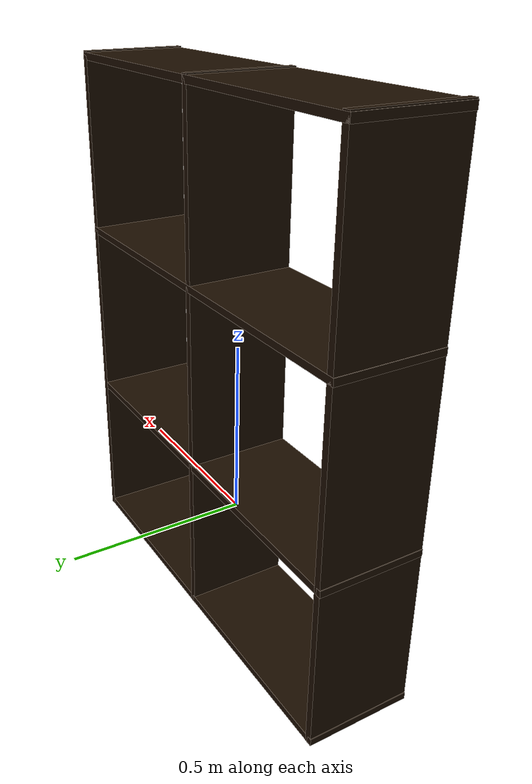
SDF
<?xml version='1.0'?>
<sdf version='1.7'>
  <model name='6_Cube_StorageE'>
    <link name='Wall_0'>
      <pose>0 0 -0.281485 0 -0 0</pose>
      <inertial>
        <mass>1.6201</mass>
        <inertia>
          <ixx>0.0119</ixx>
          <iyy>0.0631</iyy>
          <izz>0.0513</izz>
          <ixy>0</ixy>
          <ixz>0</ixz>
          <iyz>0</iyz>
        </inertia>
        <pose>0 0 0 0 -0 0</pose>
      </inertial>
      <self_collide>0</self_collide>
      <enable_wind>0</enable_wind>
      <kinematic>0</kinematic>
      <gravity>1</gravity>
      <visual name='Wall_0_Visual'>
        <geometry>
          <box>
            <size>1.2 0.296 0.02</size>
          </box>
        </geometry>
        <material>
          <script>
            <uri>file://media/materials/scripts/gazebo.material</uri>
            <name>Gazebo/Grey</name>
          </script>
          <ambient>0.106 0.051 0 1</ambient>
          <shader type='pixel'>
            <normal_map>__default__</normal_map>
          </shader>
          <diffuse>0.7 0.7 0.7 1</diffuse>
          <specular>0.01 0.01 0.01 1</specular>
          <emissive>0 0 0 1</emissive>
        </material>
        <pose>0 0 0 0 -0 0</pose>
        <transparency>0</transparency>
        <cast_shadows>1</cast_shadows>
      </visual>
      <collision name='Wall_0_Collision'>
        <laser_retro>0</laser_retro>
        <max_contacts>10</max_contacts>
        <pose>0 0 0 0 -0 0</pose>
        <geometry>
          <box>
            <size>0.616 0.296 0.02</size>
          </box>
        </geometry>
        <surface>
          <friction>
            <ode>
              <mu>1</mu>
              <mu2>1</mu2>
              <fdir1>0 0 0</fdir1>
              <slip1>0</slip1>
              <slip2>0</slip2>
            </ode>
            <torsional>
              <coefficient>1</coefficient>
              <patch_radius>0</patch_radius>
              <surface_radius>0</surface_radius>
              <use_patch_radius>1</use_patch_radius>
              <ode>
                <slip>0</slip>
              </ode>
            </torsional>
          </friction>
          <bounce>
            <restitution_coefficient>0</restitution_coefficient>
            <threshold>1e+06</threshold>
          </bounce>
          <contact>
            <collide_without_contact>0</collide_without_contact>
            <collide_without_contact_bitmask>1</collide_without_contact_bitmask>
            <collide_bitmask>1</collide_bitmask>
            <ode>
              <soft_cfm>0</soft_cfm>
              <soft_erp>0.2</soft_erp>
              <kp>1e+13</kp>
              <kd>1</kd>
              <max_vel>0.01</max_vel>
              <min_depth>0</min_depth>
            </ode>
            <bullet>
              <split_impulse>1</split_impulse>
              <split_impulse_penetration_threshold>-0.01</split_impulse_penetration_threshold>
              <soft_cfm>0</soft_cfm>
              <soft_erp>0.2</soft_erp>
              <kp>1e+13</kp>
              <kd>1</kd>
            </bullet>
          </contact>
        </surface>
      </collision>
    </link>
    <link name='Wall_10'>
      <pose>0 0 0.695219 0 -0 0</pose>
      <inertial>
        <mass>1.6201</mass>
        <inertia>
          <ixx>0.0119</ixx>
          <iyy>0.0631</iyy>
          <izz>0.0513</izz>
          <ixy>0</ixy>
          <ixz>0</ixz>
          <iyz>0</iyz>
        </inertia>
        <pose>0 0 0 0 -0 0</pose>
      </inertial>
      <self_collide>0</self_collide>
      <enable_wind>0</enable_wind>
      <kinematic>0</kinematic>
      <gravity>1</gravity>
      <visual name='Wall_10_Visual'>
        <geometry>
          <box>
            <size>1.2 0.296 0.02</size>
          </box>
        </geometry>
        <material>
          <script>
            <uri>file://media/materials/scripts/gazebo.material</uri>
            <name>Gazebo/Grey</name>
          </script>
          <ambient>0.106 0.051 0 1</ambient>
          <shader type='pixel'>
            <normal_map>__default__</normal_map>
          </shader>
          <diffuse>0.7 0.7 0.7 1</diffuse>
          <specular>0.01 0.01 0.01 1</specular>
          <emissive>0 0 0 1</emissive>
        </material>
        <pose>0 0 0 0 -0 0</pose>
        <transparency>0</transparency>
        <cast_shadows>1</cast_shadows>
      </visual>
      <collision name='Wall_10_Collision'>
        <laser_retro>0</laser_retro>
        <max_contacts>10</max_contacts>
        <pose>0 0 0 0 -0 0</pose>
        <geometry>
          <box>
            <size>0.616 0.296 0.02</size>
          </box>
        </geometry>
        <surface>
          <friction>
            <ode>
              <mu>1</mu>
              <mu2>1</mu2>
              <fdir1>0 0 0</fdir1>
              <slip1>0</slip1>
              <slip2>0</slip2>
            </ode>
            <torsional>
              <coefficient>1</coefficient>
              <patch_radius>0</patch_radius>
              <surface_radius>0</surface_radius>
              <use_patch_radius>1</use_patch_radius>
              <ode>
                <slip>0</slip>
              </ode>
            </torsional>
          </friction>
          <bounce>
            <restitution_coefficient>0</restitution_coefficient>
            <threshold>1e+06</threshold>
          </bounce>
          <contact>
            <collide_without_contact>0</collide_without_contact>
            <collide_without_contact_bitmask>1</collide_without_contact_bitmask>
            <collide_bitmask>1</collide_bitmask>
            <ode>
              <soft_cfm>0</soft_cfm>
              <soft_erp>0.2</soft_erp>
              <kp>1e+13</kp>
              <kd>1</kd>
              <max_vel>0.01</max_vel>
              <min_depth>0</min_depth>
            </ode>
            <bullet>
              <split_impulse>1</split_impulse>
              <split_impulse_penetration_threshold>-0.01</split_impulse_penetration_threshold>
              <soft_cfm>0</soft_cfm>
              <soft_erp>0.2</soft_erp>
              <kp>1e+13</kp>
              <kd>1</kd>
            </bullet>
          </contact>
        </surface>
      </collision>
    </link>
    <link name='Wall_12'>
      <pose>0 0 0.4575 0 -0 0</pose>
      <inertial>
        <mass>2.4065</mass>
        <inertia>
          <ixx>0.0177</ixx>
          <iyy>0.1855</iyy>
          <izz>0.168</izz>
          <ixy>0</ixy>
          <ixz>0</ixz>
          <iyz>0</iyz>
        </inertia>
        <pose>0 0 0 0 -0 0</pose>
      </inertial>
      <self_collide>0</self_collide>
      <enable_wind>0</enable_wind>
      <kinematic>0</kinematic>
      <gravity>1</gravity>
      <visual name='Wall_12_Visual'>
        <geometry>
          <box>
            <size>0.02 0.296 1.5</size>
          </box>
        </geometry>
        <material>
          <script>
            <uri>file://media/materials/scripts/gazebo.material</uri>
            <name>Gazebo/Grey</name>
          </script>
          <ambient>0.106 0.051 0 1</ambient>
          <shader type='pixel'>
            <normal_map>__default__</normal_map>
          </shader>
          <diffuse>0.7 0.7 0.7 1</diffuse>
          <specular>0.01 0.01 0.01 1</specular>
          <emissive>0 0 0 1</emissive>
        </material>
        <pose>0 0 0 0 -0 0</pose>
        <transparency>0</transparency>
        <cast_shadows>1</cast_shadows>
      </visual>
      <collision name='Wall_12_Collision'>
        <laser_retro>0</laser_retro>
        <max_contacts>10</max_contacts>
        <pose>0 0 0 0 -0 0</pose>
        <geometry>
          <box>
            <size>0.02 0.296 0.915</size>
          </box>
        </geometry>
        <surface>
          <friction>
            <ode>
              <mu>1</mu>
              <mu2>1</mu2>
              <fdir1>0 0 0</fdir1>
              <slip1>0</slip1>
              <slip2>0</slip2>
            </ode>
            <torsional>
              <coefficient>1</coefficient>
              <patch_radius>0</patch_radius>
              <surface_radius>0</surface_radius>
              <use_patch_radius>1</use_patch_radius>
              <ode>
                <slip>0</slip>
              </ode>
            </torsional>
          </friction>
          <bounce>
            <restitution_coefficient>0</restitution_coefficient>
            <threshold>1e+06</threshold>
          </bounce>
          <contact>
            <collide_without_contact>0</collide_without_contact>
            <collide_without_contact_bitmask>1</collide_without_contact_bitmask>
            <collide_bitmask>1</collide_bitmask>
            <ode>
              <soft_cfm>0</soft_cfm>
              <soft_erp>0.2</soft_erp>
              <kp>1e+13</kp>
              <kd>1</kd>
              <max_vel>0.01</max_vel>
              <min_depth>0</min_depth>
            </ode>
            <bullet>
              <split_impulse>1</split_impulse>
              <split_impulse_penetration_threshold>-0.01</split_impulse_penetration_threshold>
              <soft_cfm>0</soft_cfm>
              <soft_erp>0.2</soft_erp>
              <kp>1e+13</kp>
              <kd>1</kd>
            </bullet>
          </contact>
        </surface>
      </collision>
    </link>
    <link name='Wall_2'>
      <pose>-0.588129 0 0.4575 0 -0 0</pose>
      <inertial>
        <mass>2.4065</mass>
        <inertia>
          <ixx>0.0177</ixx>
          <iyy>0.1855</iyy>
          <izz>0.168</izz>
          <ixy>0</ixy>
          <ixz>0</ixz>
          <iyz>0</iyz>
        </inertia>
        <pose>0 0 0 0 -0 0</pose>
      </inertial>
      <self_collide>0</self_collide>
      <enable_wind>0</enable_wind>
      <kinematic>0</kinematic>
      <gravity>1</gravity>
      <visual name='Wall_2_Visual'>
        <geometry>
          <box>
            <size>0.02 0.296 1.5</size>
          </box>
        </geometry>
        <material>
          <script>
            <uri>file://media/materials/scripts/gazebo.material</uri>
            <name>Gazebo/Grey</name>
          </script>
          <ambient>0.106 0.051 0 1</ambient>
          <shader type='pixel'>
            <normal_map>__default__</normal_map>
          </shader>
          <diffuse>0.7 0.7 0.7 1</diffuse>
          <specular>0.01 0.01 0.01 1</specular>
          <emissive>0 0 0 1</emissive>
        </material>
        <pose>0 0 0 0 -0 0</pose>
        <transparency>0</transparency>
        <cast_shadows>1</cast_shadows>
      </visual>
      <collision name='Wall_2_Collision'>
        <laser_retro>0</laser_retro>
        <max_contacts>10</max_contacts>
        <pose>0 0 0 0 -0 0</pose>
        <geometry>
          <box>
            <size>0.02 0.296 0.915</size>
          </box>
        </geometry>
        <surface>
          <friction>
            <ode>
              <mu>1</mu>
              <mu2>1</mu2>
              <fdir1>0 0 0</fdir1>
              <slip1>0</slip1>
              <slip2>0</slip2>
            </ode>
            <torsional>
              <coefficient>1</coefficient>
              <patch_radius>0</patch_radius>
              <surface_radius>0</surface_radius>
              <use_patch_radius>1</use_patch_radius>
              <ode>
                <slip>0</slip>
              </ode>
            </torsional>
          </friction>
          <bounce>
            <restitution_coefficient>0</restitution_coefficient>
            <threshold>1e+06</threshold>
          </bounce>
          <contact>
            <collide_without_contact>0</collide_without_contact>
            <collide_without_contact_bitmask>1</collide_without_contact_bitmask>
            <collide_bitmask>1</collide_bitmask>
            <ode>
              <soft_cfm>0</soft_cfm>
              <soft_erp>0.2</soft_erp>
              <kp>1e+13</kp>
              <kd>1</kd>
              <max_vel>0.01</max_vel>
              <min_depth>0</min_depth>
            </ode>
            <bullet>
              <split_impulse>1</split_impulse>
              <split_impulse_penetration_threshold>-0.01</split_impulse_penetration_threshold>
              <soft_cfm>0</soft_cfm>
              <soft_erp>0.2</soft_erp>
              <kp>1e+13</kp>
              <kd>1</kd>
            </bullet>
          </contact>
        </surface>
      </collision>
    </link>
    <link name='Wall_4'>
      <pose>0.589506 0 0.4575 0 -0 0</pose>
      <inertial>
        <mass>2.4065</mass>
        <inertia>
          <ixx>0.0177</ixx>
          <iyy>0.1855</iyy>
          <izz>0.168</izz>
          <ixy>0</ixy>
          <ixz>0</ixz>
          <iyz>0</iyz>
        </inertia>
        <pose>0 0 0 0 -0 0</pose>
      </inertial>
      <self_collide>0</self_collide>
      <enable_wind>0</enable_wind>
      <kinematic>0</kinematic>
      <gravity>1</gravity>
      <visual name='Wall_4_Visual'>
        <geometry>
          <box>
            <size>0.02 0.296 1.5</size>
          </box>
        </geometry>
        <material>
          <script>
            <uri>file://media/materials/scripts/gazebo.material</uri>
            <name>Gazebo/Grey</name>
          </script>
          <ambient>0.106 0.051 0 1</ambient>
          <shader type='pixel'>
            <normal_map>__default__</normal_map>
          </shader>
          <diffuse>0.7 0.7 0.7 1</diffuse>
          <specular>0.01 0.01 0.01 1</specular>
          <emissive>0 0 0 1</emissive>
        </material>
        <pose>0 0 0 0 -0 0</pose>
        <transparency>0</transparency>
        <cast_shadows>1</cast_shadows>
      </visual>
      <collision name='Wall_4_Collision'>
        <laser_retro>0</laser_retro>
        <max_contacts>10</max_contacts>
        <pose>0 0 0 0 -0 0</pose>
        <geometry>
          <box>
            <size>0.02 0.296 0.915</size>
          </box>
        </geometry>
        <surface>
          <friction>
            <ode>
              <mu>1</mu>
              <mu2>1</mu2>
              <fdir1>0 0 0</fdir1>
              <slip1>0</slip1>
              <slip2>0</slip2>
            </ode>
            <torsional>
              <coefficient>1</coefficient>
              <patch_radius>0</patch_radius>
              <surface_radius>0</surface_radius>
              <use_patch_radius>1</use_patch_radius>
              <ode>
                <slip>0</slip>
              </ode>
            </torsional>
          </friction>
          <bounce>
            <restitution_coefficient>0</restitution_coefficient>
            <threshold>1e+06</threshold>
          </bounce>
          <contact>
            <collide_without_contact>0</collide_without_contact>
            <collide_without_contact_bitmask>1</collide_without_contact_bitmask>
            <collide_bitmask>1</collide_bitmask>
            <ode>
              <soft_cfm>0</soft_cfm>
              <soft_erp>0.2</soft_erp>
              <kp>1e+13</kp>
              <kd>1</kd>
              <max_vel>0.01</max_vel>
              <min_depth>0</min_depth>
            </ode>
            <bullet>
              <split_impulse>1</split_impulse>
              <split_impulse_penetration_threshold>-0.01</split_impulse_penetration_threshold>
              <soft_cfm>0</soft_cfm>
              <soft_erp>0.2</soft_erp>
              <kp>1e+13</kp>
              <kd>1</kd>
            </bullet>
          </contact>
        </surface>
      </collision>
    </link>
    <link name='Wall_6'>
      <pose>0 0 1.19392 0 -0 0</pose>
      <inertial>
        <mass>1.6201</mass>
        <inertia>
          <ixx>0.0119</ixx>
          <iyy>0.0631</iyy>
          <izz>0.0513</izz>
          <ixy>0</ixy>
          <ixz>0</ixz>
          <iyz>0</iyz>
        </inertia>
        <pose>0 0 0 0 -0 0</pose>
      </inertial>
      <self_collide>0</self_collide>
      <enable_wind>0</enable_wind>
      <kinematic>0</kinematic>
      <gravity>1</gravity>
      <visual name='Wall_6_Visual'>
        <geometry>
          <box>
            <size>1.2 0.296 0.02</size>
          </box>
        </geometry>
        <material>
          <script>
            <uri>file://media/materials/scripts/gazebo.material</uri>
            <name>Gazebo/Grey</name>
          </script>
          <ambient>0.106 0.051 0 1</ambient>
          <shader type='pixel'>
            <normal_map>__default__</normal_map>
          </shader>
          <diffuse>0.7 0.7 0.7 1</diffuse>
          <specular>0.01 0.01 0.01 1</specular>
          <emissive>0 0 0 1</emissive>
        </material>
        <pose>0 0 0 0 -0 0</pose>
        <transparency>0</transparency>
        <cast_shadows>1</cast_shadows>
      </visual>
      <collision name='Wall_6_Collision'>
        <laser_retro>0</laser_retro>
        <max_contacts>10</max_contacts>
        <pose>0 0 0 0 -0 0</pose>
        <geometry>
          <box>
            <size>0.616 0.296 0.02</size>
          </box>
        </geometry>
        <surface>
          <friction>
            <ode>
              <mu>1</mu>
              <mu2>1</mu2>
              <fdir1>0 0 0</fdir1>
              <slip1>0</slip1>
              <slip2>0</slip2>
            </ode>
            <torsional>
              <coefficient>1</coefficient>
              <patch_radius>0</patch_radius>
              <surface_radius>0</surface_radius>
              <use_patch_radius>1</use_patch_radius>
              <ode>
                <slip>0</slip>
              </ode>
            </torsional>
          </friction>
          <bounce>
            <restitution_coefficient>0</restitution_coefficient>
            <threshold>1e+06</threshold>
          </bounce>
          <contact>
            <collide_without_contact>0</collide_without_contact>
            <collide_without_contact_bitmask>1</collide_without_contact_bitmask>
            <collide_bitmask>1</collide_bitmask>
            <ode>
              <soft_cfm>0</soft_cfm>
              <soft_erp>0.2</soft_erp>
              <kp>1e+13</kp>
              <kd>1</kd>
              <max_vel>0.01</max_vel>
              <min_depth>0</min_depth>
            </ode>
            <bullet>
              <split_impulse>1</split_impulse>
              <split_impulse_penetration_threshold>-0.01</split_impulse_penetration_threshold>
              <soft_cfm>0</soft_cfm>
              <soft_erp>0.2</soft_erp>
              <kp>1e+13</kp>
              <kd>1</kd>
            </bullet>
          </contact>
        </surface>
      </collision>
    </link>
    <link name='Wall_8'>
      <pose>0 0 0.174211 0 -0 0</pose>
      <inertial>
        <mass>1.6201</mass>
        <inertia>
          <ixx>0.0119</ixx>
          <iyy>0.0631</iyy>
          <izz>0.0513</izz>
          <ixy>0</ixy>
          <ixz>0</ixz>
          <iyz>0</iyz>
        </inertia>
        <pose>0 0 0 0 -0 0</pose>
      </inertial>
      <self_collide>0</self_collide>
      <enable_wind>0</enable_wind>
      <kinematic>0</kinematic>
      <gravity>1</gravity>
      <visual name='Wall_8_Visual'>
        <geometry>
          <box>
            <size>1.2 0.296 0.02</size>
          </box>
        </geometry>
        <material>
          <script>
            <uri>file://media/materials/scripts/gazebo.material</uri>
            <name>Gazebo/Grey</name>
          </script>
          <ambient>0.106 0.051 0 1</ambient>
          <shader type='pixel'>
            <normal_map>__default__</normal_map>
          </shader>
          <diffuse>0.7 0.7 0.7 1</diffuse>
          <specular>0.01 0.01 0.01 1</specular>
          <emissive>0 0 0 1</emissive>
        </material>
        <pose>0 0 0 0 -0 0</pose>
        <transparency>0</transparency>
        <cast_shadows>1</cast_shadows>
      </visual>
      <collision name='Wall_8_Collision'>
        <laser_retro>0</laser_retro>
        <max_contacts>10</max_contacts>
        <pose>0 0 0 0 -0 0</pose>
        <geometry>
          <box>
            <size>0.616 0.296 0.02</size>
          </box>
        </geometry>
        <surface>
          <friction>
            <ode>
              <mu>1</mu>
              <mu2>1</mu2>
              <fdir1>0 0 0</fdir1>
              <slip1>0</slip1>
              <slip2>0</slip2>
            </ode>
            <torsional>
              <coefficient>1</coefficient>
              <patch_radius>0</patch_radius>
              <surface_radius>0</surface_radius>
              <use_patch_radius>1</use_patch_radius>
              <ode>
                <slip>0</slip>
              </ode>
            </torsional>
          </friction>
          <bounce>
            <restitution_coefficient>0</restitution_coefficient>
            <threshold>1e+06</threshold>
          </bounce>
          <contact>
            <collide_without_contact>0</collide_without_contact>
            <collide_without_contact_bitmask>1</collide_without_contact_bitmask>
            <collide_bitmask>1</collide_bitmask>
            <ode>
              <soft_cfm>0</soft_cfm>
              <soft_erp>0.2</soft_erp>
              <kp>1e+13</kp>
              <kd>1</kd>
              <max_vel>0.01</max_vel>
              <min_depth>0</min_depth>
            </ode>
            <bullet>
              <split_impulse>1</split_impulse>
              <split_impulse_penetration_threshold>-0.01</split_impulse_penetration_threshold>
              <soft_cfm>0</soft_cfm>
              <soft_erp>0.2</soft_erp>
              <kp>1e+13</kp>
              <kd>1</kd>
            </bullet>
          </contact>
        </surface>
      </collision>
    </link>
    <joint name='0_12' type='fixed'>
      <parent>Wall_12</parent>
      <child>Wall_0</child>
      <pose>0 0 0 0 -0 0</pose>
      <physics>
        <ode>
          <limit>
            <cfm>0</cfm>
            <erp>0.2</erp>
          </limit>
          <suspension>
            <cfm>0</cfm>
            <erp>0.2</erp>
          </suspension>
        </ode>
      </physics>
    </joint>
    <joint name='0_2' type='fixed'>
      <parent>Wall_2</parent>
      <child>Wall_0</child>
      <pose>-0.308 0 0 0 -0 0</pose>
      <physics>
        <ode>
          <limit>
            <cfm>0</cfm>
            <erp>0.2</erp>
          </limit>
          <suspension>
            <cfm>0</cfm>
            <erp>0.2</erp>
          </suspension>
        </ode>
      </physics>
    </joint>
    <joint name='0_4' type='fixed'>
      <parent>Wall_4</parent>
      <child>Wall_0</child>
      <pose>0.308 0 0 0 -0 0</pose>
      <physics>
        <ode>
          <limit>
            <cfm>0</cfm>
            <erp>0.2</erp>
          </limit>
          <suspension>
            <cfm>0</cfm>
            <erp>0.2</erp>
          </suspension>
        </ode>
      </physics>
    </joint>
    <joint name='10_12' type='fixed'>
      <parent>Wall_12</parent>
      <child>Wall_10</child>
      <pose>0 0 0 0 -0 0</pose>
      <physics>
        <ode>
          <limit>
            <cfm>0</cfm>
            <erp>0.2</erp>
          </limit>
          <suspension>
            <cfm>0</cfm>
            <erp>0.2</erp>
          </suspension>
        </ode>
      </physics>
    </joint>
    <joint name='10_2' type='fixed'>
      <parent>Wall_2</parent>
      <child>Wall_10</child>
      <pose>-0.308 0 0 0 -0 0</pose>
      <physics>
        <ode>
          <limit>
            <cfm>0</cfm>
            <erp>0.2</erp>
          </limit>
          <suspension>
            <cfm>0</cfm>
            <erp>0.2</erp>
          </suspension>
        </ode>
      </physics>
    </joint>
    <joint name='10_4' type='fixed'>
      <parent>Wall_4</parent>
      <child>Wall_10</child>
      <pose>0.308 0 0 0 -0 0</pose>
      <physics>
        <ode>
          <limit>
            <cfm>0</cfm>
            <erp>0.2</erp>
          </limit>
          <suspension>
            <cfm>0</cfm>
            <erp>0.2</erp>
          </suspension>
        </ode>
      </physics>
    </joint>
    <joint name='6_12' type='fixed'>
      <parent>Wall_12</parent>
      <child>Wall_6</child>
      <pose>0 0 0 0 -0 0</pose>
      <physics>
        <ode>
          <limit>
            <cfm>0</cfm>
            <erp>0.2</erp>
          </limit>
          <suspension>
            <cfm>0</cfm>
            <erp>0.2</erp>
          </suspension>
        </ode>
      </physics>
    </joint>
    <joint name='6_2' type='fixed'>
      <parent>Wall_2</parent>
      <child>Wall_6</child>
      <pose>-0.308 0 0 0 -0 0</pose>
      <physics>
        <ode>
          <limit>
            <cfm>0</cfm>
            <erp>0.2</erp>
          </limit>
          <suspension>
            <cfm>0</cfm>
            <erp>0.2</erp>
          </suspension>
        </ode>
      </physics>
    </joint>
    <joint name='6_4' type='fixed'>
      <parent>Wall_4</parent>
      <child>Wall_6</child>
      <pose>0.308 0 0 0 -0 0</pose>
      <physics>
        <ode>
          <limit>
            <cfm>0</cfm>
            <erp>0.2</erp>
          </limit>
          <suspension>
            <cfm>0</cfm>
            <erp>0.2</erp>
          </suspension>
        </ode>
      </physics>
    </joint>
    <joint name='8_12' type='fixed'>
      <parent>Wall_12</parent>
      <child>Wall_8</child>
      <pose>0 0 0 0 -0 0</pose>
      <physics>
        <ode>
          <limit>
            <cfm>0</cfm>
            <erp>0.2</erp>
          </limit>
          <suspension>
            <cfm>0</cfm>
            <erp>0.2</erp>
          </suspension>
        </ode>
      </physics>
    </joint>
    <joint name='8_2' type='fixed'>
      <parent>Wall_2</parent>
      <child>Wall_8</child>
      <pose>-0.308 0 0 0 -0 0</pose>
      <physics>
        <ode>
          <limit>
            <cfm>0</cfm>
            <erp>0.2</erp>
          </limit>
          <suspension>
            <cfm>0</cfm>
            <erp>0.2</erp>
          </suspension>
        </ode>
      </physics>
    </joint>
    <joint name='8_4' type='fixed'>
      <parent>Wall_4</parent>
      <child>Wall_8</child>
      <pose>0.308 0 0 0 -0 0</pose>
      <physics>
        <ode>
          <limit>
            <cfm>0</cfm>
            <erp>0.2</erp>
          </limit>
          <suspension>
            <cfm>0</cfm>
            <erp>0.2</erp>
          </suspension>
        </ode>
      </physics>
    </joint>
    <joint name='Wall_4_JOINT_0' type='revolute'>
      <parent>Wall_4</parent>
      <child>Wall_10</child>
      <pose>0 0 0 0 -0 0</pose>
      <axis>
        <xyz>1 0 0</xyz>
        <limit>
          <lower>-1.79769e+308</lower>
          <upper>1.79769e+308</upper>
          <effort>-1</effort>
          <velocity>-1</velocity>
        </limit>
        <dynamics>
          <spring_reference>0</spring_reference>
          <spring_stiffness>0</spring_stiffness>
          <damping>0</damping>
        </dynamics>
      </axis>
      <physics>
        <ode>
          <limit>
            <cfm>0</cfm>
            <erp>0.2</erp>
          </limit>
          <suspension>
            <cfm>0</cfm>
            <erp>0.2</erp>
          </suspension>
        </ode>
      </physics>
    </joint>
    <static>1</static>
    <allow_auto_disable>1</allow_auto_disable>
  </model>
</sdf>
